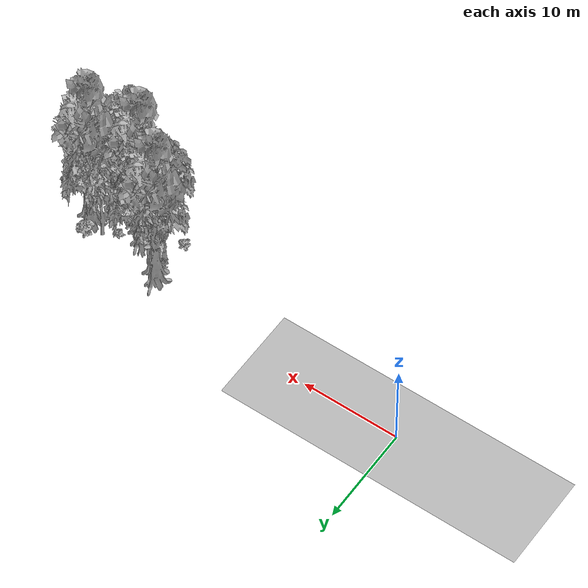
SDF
<sdf version="1.7">
 <world name="default">
  <model name="ground_plane">
   <static>1</static>
   <link name="link">
    <collision name="collision">
     <geometry><plane><normal>0 0 1</normal><size>100 100</size></plane></geometry>
     <surface><contact><ode><min_depth>0.01</min_depth><max_vel>0</max_vel></ode></contact></surface>
    </collision>
    <visual name="grass">
     <cast_shadows>0</cast_shadows>
     <geometry>
      <mesh>
       <scale>0.5814285714285714 0.18142857142857144 0.1</scale>
       <uri>file://grass_plane/meshes/grass_plane.dae</uri>
      </mesh>
     </geometry>
    </visual>
   </link>
  </model>
  <model name="Tree 10">
   <static>1</static>
   <pose>28.569949993472278 -3.9854584433061273 0 1.57079 -0 0</pose>
   <link name="link">
    <collision name="collision">
     <geometry><mesh><scale>3.5 5 3.5</scale><uri>model://tree_9/meshes/tree_9.obj</uri></mesh></geometry>
    </collision>
    <visual name="visual">
     <geometry><mesh><scale>3.5 5 3.5</scale><uri>model://tree_9/meshes/tree_9.obj</uri></mesh></geometry>
    </visual>
   </link>
  </model>
  <model name="Tree 57">
   <static>1</static>
   <pose>31.387051017714995 -6.413338065786585 0 1.57079 -0 0</pose>
   <link name="link">
    <collision name="collision">
     <geometry><mesh><scale>3.5 5 3.5</scale><uri>model://tree_2/meshes/tree_2.obj</uri></mesh></geometry>
    </collision>
    <visual name="visual">
     <geometry><mesh><scale>3.5 5 3.5</scale><uri>model://tree_2/meshes/tree_2.obj</uri></mesh></geometry>
    </visual>
   </link>
  </model>
  <model name="Tree 69">
   <static>1</static>
   <pose>32.53831865566896 -6.791425290337955 0 1.57079 -0 0</pose>
   <link name="link">
    <collision name="collision">
     <geometry><mesh><scale>3.5 5 3.5</scale><uri>model://tree_2/meshes/tree_2.obj</uri></mesh></geometry>
    </collision>
    <visual name="visual">
     <geometry><mesh><scale>3.5 5 3.5</scale><uri>model://tree_2/meshes/tree_2.obj</uri></mesh></geometry>
    </visual>
   </link>
  </model>
  <model name="Tree 76">
   <static>1</static>
   <pose>34.86916390580966 -3.0273940773415493 0 1.57079 -0 0</pose>
   <link name="link">
    <collision name="collision">
     <geometry><mesh><scale>3.5 5 3.5</scale><uri>model://tree_2/meshes/tree_2.obj</uri></mesh></geometry>
    </collision>
    <visual name="visual">
     <geometry><mesh><scale>3.5 5 3.5</scale><uri>model://tree_2/meshes/tree_2.obj</uri></mesh></geometry>
    </visual>
   </link>
  </model>
  <model name="Tree 135">
   <static>1</static>
   <pose>27.76183105525108 -1.5962458561437316 0 1.57079 -0 0</pose>
   <link name="link">
    <collision name="collision">
     <geometry><mesh><scale>3.5 5 3.5</scale><uri>model://tree_4/meshes/tree_4.obj</uri></mesh></geometry>
    </collision>
    <visual name="visual">
     <geometry><mesh><scale>3.5 5 3.5</scale><uri>model://tree_4/meshes/tree_4.obj</uri></mesh></geometry>
    </visual>
   </link>
  </model>
  <model name="Tree 168">
   <static>1</static>
   <pose>30.882188587161153 -3.535823567744268 0 1.57079 -0 0</pose>
   <link name="link">
    <collision name="collision">
     <geometry><mesh><scale>3.5 5 3.5</scale><uri>model://tree_9/meshes/tree_9.obj</uri></mesh></geometry>
    </collision>
    <visual name="visual">
     <geometry><mesh><scale>3.5 5 3.5</scale><uri>model://tree_9/meshes/tree_9.obj</uri></mesh></geometry>
    </visual>
   </link>
  </model>
  <model name="Tree 212">
   <static>1</static>
   <pose>31.074568304595402 -4.751904489169831 0 1.57079 -0 0</pose>
   <link name="link">
    <collision name="collision">
     <geometry><mesh><scale>3.5 5 3.5</scale><uri>model://tree_9/meshes/tree_9.obj</uri></mesh></geometry>
    </collision>
    <visual name="visual">
     <geometry><mesh><scale>3.5 5 3.5</scale><uri>model://tree_9/meshes/tree_9.obj</uri></mesh></geometry>
    </visual>
   </link>
  </model>
  <model name="Tree 290">
   <static>1</static>
   <pose>31.585664575568714 -4.56146528301494 0 1.57079 -0 0</pose>
   <link name="link">
    <collision name="collision">
     <geometry><mesh><scale>3.5 5 3.5</scale><uri>model://tree_4/meshes/tree_4.obj</uri></mesh></geometry>
    </collision>
    <visual name="visual">
     <geometry><mesh><scale>3.5 5 3.5</scale><uri>model://tree_4/meshes/tree_4.obj</uri></mesh></geometry>
    </visual>
   </link>
  </model>
  <model name="Tree 292">
   <static>1</static>
   <pose>35.869266891595984 -5.854635171771534 0 1.57079 -0 0</pose>
   <link name="link">
    <collision name="collision">
     <geometry><mesh><scale>3.5 5 3.5</scale><uri>model://tree_2/meshes/tree_2.obj</uri></mesh></geometry>
    </collision>
    <visual name="visual">
     <geometry><mesh><scale>3.5 5 3.5</scale><uri>model://tree_2/meshes/tree_2.obj</uri></mesh></geometry>
    </visual>
   </link>
  </model>
  <model name="Tree 295">
   <static>1</static>
   <pose>29.362145988904828 -2.7699068264544824 0 1.57079 -0 0</pose>
   <link name="link">
    <collision name="collision">
     <geometry><mesh><scale>3.5 5 3.5</scale><uri>model://tree_2/meshes/tree_2.obj</uri></mesh></geometry>
    </collision>
    <visual name="visual">
     <geometry><mesh><scale>3.5 5 3.5</scale><uri>model://tree_2/meshes/tree_2.obj</uri></mesh></geometry>
    </visual>
   </link>
  </model>
  <model name="Tree 298">
   <static>1</static>
   <pose>28.423361154397355 -3.0274648252715632 0 1.57079 -0 0</pose>
   <link name="link">
    <collision name="collision">
     <geometry><mesh><scale>3.5 5 3.5</scale><uri>model://tree_9/meshes/tree_9.obj</uri></mesh></geometry>
    </collision>
    <visual name="visual">
     <geometry><mesh><scale>3.5 5 3.5</scale><uri>model://tree_9/meshes/tree_9.obj</uri></mesh></geometry>
    </visual>
   </link>
  </model>
  <model name="Tree 334">
   <static>1</static>
   <pose>36.58673677464981 -3.445829261983725 0 1.57079 -0 0</pose>
   <link name="link">
    <collision name="collision">
     <geometry><mesh><scale>3.5 5 3.5</scale><uri>model://tree_4/meshes/tree_4.obj</uri></mesh></geometry>
    </collision>
    <visual name="visual">
     <geometry><mesh><scale>3.5 5 3.5</scale><uri>model://tree_4/meshes/tree_4.obj</uri></mesh></geometry>
    </visual>
   </link>
  </model>
  <model name="Tree 434">
   <static>1</static>
   <pose>34.96937971832257 -7.220106657005588 0 1.57079 -0 0</pose>
   <link name="link">
    <collision name="collision">
     <geometry><mesh><scale>3.5 5 3.5</scale><uri>model://tree_9/meshes/tree_9.obj</uri></mesh></geometry>
    </collision>
    <visual name="visual">
     <geometry><mesh><scale>3.5 5 3.5</scale><uri>model://tree_9/meshes/tree_9.obj</uri></mesh></geometry>
    </visual>
   </link>
  </model>
  <model name="Bush 44">
   <static>1</static>
   <pose>35.406635922889706 -7.329947830237079 0 1.57079 -0 0</pose>
   <link name="link">
    <collision name="collision">
     <geometry><mesh><scale>2 2 2</scale><uri>model://bush_0/meshes/bush_0.obj</uri></mesh></geometry>
     <surface><contact><collide_without_contact>false</collide_without_contact></contact></surface>
    </collision>
    <visual name="visual">
     <geometry><mesh><scale>2 2 2</scale><uri>model://bush_0/meshes/bush_0.obj</uri></mesh></geometry>
    </visual>
   </link>
  </model>
  <model name="Bush 55">
   <static>1</static>
   <pose>33.44807163727175 -7.1678865566032 0 1.57079 -0 0</pose>
   <link name="link">
    <collision name="collision">
     <geometry><mesh><scale>2 2 2</scale><uri>model://bush_2/meshes/bush_2.obj</uri></mesh></geometry>
     <surface><contact><collide_without_contact>false</collide_without_contact></contact></surface>
    </collision>
    <visual name="visual">
     <geometry><mesh><scale>2 2 2</scale><uri>model://bush_2/meshes/bush_2.obj</uri></mesh></geometry>
    </visual>
   </link>
  </model>
  <model name="Bush 63">
   <static>1</static>
   <pose>36.2200012177333 -2.2347173723694045 0 1.57079 -0 0</pose>
   <link name="link">
    <collision name="collision">
     <geometry><mesh><scale>2 2 2</scale><uri>model://bush_1/meshes/bush_1.obj</uri></mesh></geometry>
     <surface><contact><collide_without_contact>false</collide_without_contact></contact></surface>
    </collision>
    <visual name="visual">
     <geometry><mesh><scale>2 2 2</scale><uri>model://bush_1/meshes/bush_1.obj</uri></mesh></geometry>
    </visual>
   </link>
  </model>
  <model name="Bush 98">
   <static>1</static>
   <pose>33.307551486064625 -5.063832408423739 0 1.57079 -0 0</pose>
   <link name="link">
    <collision name="collision">
     <geometry><mesh><scale>2 2 2</scale><uri>model://bush_3/meshes/bush_3.obj</uri></mesh></geometry>
     <surface><contact><collide_without_contact>false</collide_without_contact></contact></surface>
    </collision>
    <visual name="visual">
     <geometry><mesh><scale>2 2 2</scale><uri>model://bush_3/meshes/bush_3.obj</uri></mesh></geometry>
    </visual>
   </link>
  </model>
  <model name="Bush 115">
   <static>1</static>
   <pose>27.82798548518501 -2.520182150137911 0 1.57079 -0 0</pose>
   <link name="link">
    <collision name="collision">
     <geometry><mesh><scale>2 2 2</scale><uri>model://bush_5/meshes/bush_5.obj</uri></mesh></geometry>
     <surface><contact><collide_without_contact>false</collide_without_contact></contact></surface>
    </collision>
    <visual name="visual">
     <geometry><mesh><scale>2 2 2</scale><uri>model://bush_5/meshes/bush_5.obj</uri></mesh></geometry>
    </visual>
   </link>
  </model>
  <model name="Bush 131">
   <static>1</static>
   <pose>35.606880339585715 -6.1392814307265535 0 1.57079 -0 0</pose>
   <link name="link">
    <collision name="collision">
     <geometry><mesh><scale>2 2 2</scale><uri>model://bush_2/meshes/bush_2.obj</uri></mesh></geometry>
     <surface><contact><collide_without_contact>false</collide_without_contact></contact></surface>
    </collision>
    <visual name="visual">
     <geometry><mesh><scale>2 2 2</scale><uri>model://bush_2/meshes/bush_2.obj</uri></mesh></geometry>
    </visual>
   </link>
  </model>
  <model name="Bush 151">
   <static>1</static>
   <pose>33.71370369467985 -3.861560841933942 0 1.57079 -0 0</pose>
   <link name="link">
    <collision name="collision">
     <geometry><mesh><scale>2 2 2</scale><uri>model://bush_2/meshes/bush_2.obj</uri></mesh></geometry>
     <surface><contact><collide_without_contact>false</collide_without_contact></contact></surface>
    </collision>
    <visual name="visual">
     <geometry><mesh><scale>2 2 2</scale><uri>model://bush_2/meshes/bush_2.obj</uri></mesh></geometry>
    </visual>
   </link>
  </model>
  <model name="Bush 214">
   <static>1</static>
   <pose>27.929179853382294 -6.114292078466256 0 1.57079 -0 0</pose>
   <link name="link">
    <collision name="collision">
     <geometry><mesh><scale>2 2 2</scale><uri>model://bush_3/meshes/bush_3.obj</uri></mesh></geometry>
     <surface><contact><collide_without_contact>false</collide_without_contact></contact></surface>
    </collision>
    <visual name="visual">
     <geometry><mesh><scale>2 2 2</scale><uri>model://bush_3/meshes/bush_3.obj</uri></mesh></geometry>
    </visual>
   </link>
  </model>
  <model name="Bush 266">
   <static>1</static>
   <pose>36.346593996344254 -6.29714287463684 0 1.57079 -0 0</pose>
   <link name="link">
    <collision name="collision">
     <geometry><mesh><scale>2 2 2</scale><uri>model://bush_3/meshes/bush_3.obj</uri></mesh></geometry>
     <surface><contact><collide_without_contact>false</collide_without_contact></contact></surface>
    </collision>
    <visual name="visual">
     <geometry><mesh><scale>2 2 2</scale><uri>model://bush_3/meshes/bush_3.obj</uri></mesh></geometry>
    </visual>
   </link>
  </model>
 </world>
</sdf>
